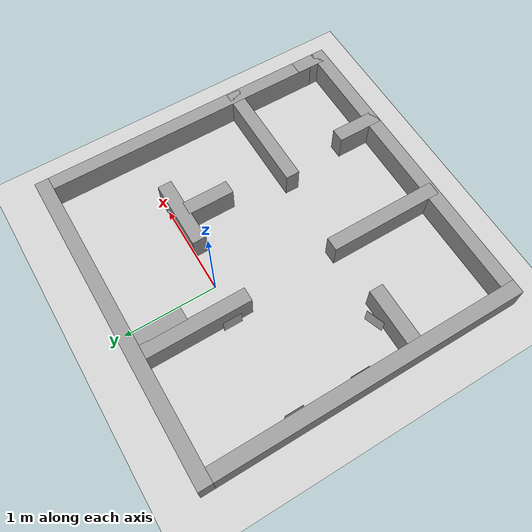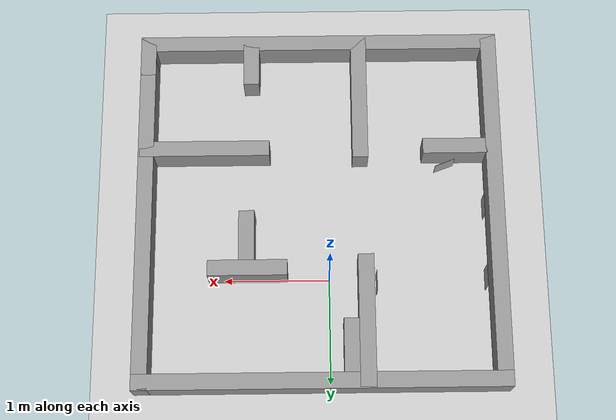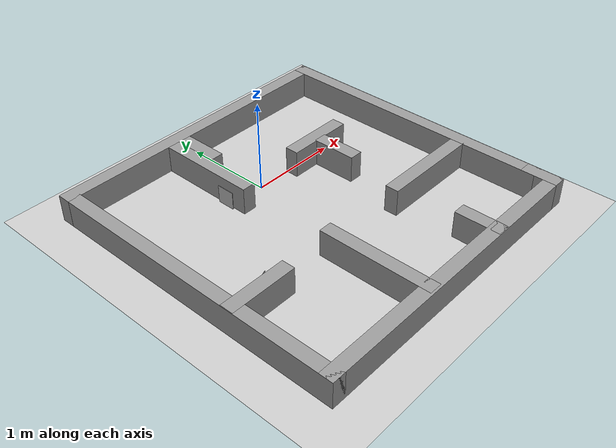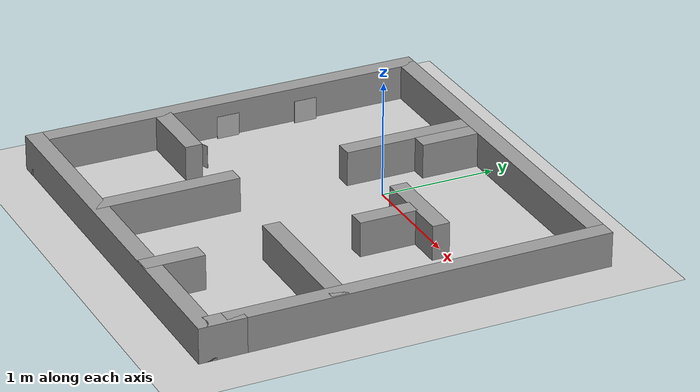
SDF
<sdf version="1.7">
 <world name="default">
  <light name="sun" type="directional">
   <pose>0 0 10 0 -0 0</pose>
   <diffuse>0.8 0.8 0.8 1</diffuse>
   <specular>0.2 0.2 0.2 1</specular>
   <attenuation>
    <range>1000</range>
    <constant>0.9</constant>
    <linear>0.01</linear>
    <quadratic>0.001</quadratic>
   </attenuation>
   <direction>-0.5 0.1 -0.9</direction>
   <spot><inner_angle>0</inner_angle><outer_angle>0</outer_angle><falloff>0</falloff></spot>
  </light>
  <model name="ground_plane">
   <static>1</static>
   <link name="link">
    <collision name="collision">
     <geometry><plane><normal>0 0 1</normal><size>100 100</size></plane></geometry>
     <surface><friction><ode><mu>100</mu><mu2>50</mu2></ode></friction></surface>
    </collision>
    <visual name="visual">
     <cast_shadows>0</cast_shadows>
     <geometry><plane><normal>0 0 1</normal><size>100 100</size></plane></geometry>
     <material>
      <script><uri>file://media/materials/scripts/gazebo.material</uri><name>Gazebo/Grey</name></script>
     </material>
    </visual>
   </link>
  </model>
  <gravity>0 0 -9.8</gravity>
  <magnetic_field>6e-06 2.3e-05 -4.2e-05</magnetic_field>
  <atmosphere type="adiabatic"/>
  <physics type="ode">
   <max_step_size>0.001</max_step_size>
   <real_time_factor>1</real_time_factor>
   <real_time_update_rate>1000</real_time_update_rate>
  </physics>
  <scene><ambient>0.4 0.4 0.4 1</ambient><background>0.7 0.7 0.7 1</background><shadows>1</shadows></scene>
  <audio><device>default</device></audio>
  <spherical_coordinates>
   <surface_model>EARTH_WGS84</surface_model>
   <latitude_deg>0</latitude_deg>
   <longitude_deg>0</longitude_deg>
   <elevation>0</elevation>
   <heading_deg>0</heading_deg>
  </spherical_coordinates>
  <model name="labmapfixed">
   <pose>0.079467 -0.67341 0 0 -0 0</pose>
   <link name="Wall_24">
    <collision name="Wall_24_Collision">
     <geometry><box><size>3.25 0.15 0.3</size></box></geometry>
     <pose>0 0 0.15 0 -0 0</pose>
    </collision>
    <visual name="Wall_24_Visual">
     <pose>0 0 0.15 0 -0 0</pose>
     <geometry><box><size>3.25 0.15 0.3</size></box></geometry>
     <material>
      <script><uri>file://media/materials/scripts/gazebo.material</uri><name>Gazebo/Grey</name></script>
      <ambient>1 1 1 1</ambient>
     </material>
     <meta><layer>0</layer></meta>
    </visual>
    <pose>1.675 0.125 0 0 -0 -1.5708</pose>
   </link>
   <link name="Wall_26">
    <collision name="Wall_26_Collision">
     <geometry><box><size>3.5 0.15 0.3</size></box></geometry>
     <pose>0 0 0.15 0 -0 0</pose>
    </collision>
    <visual name="Wall_26_Visual">
     <pose>0 0 0.15 0 -0 0</pose>
     <geometry><box><size>3.5 0.15 0.3</size></box></geometry>
     <material>
      <script><uri>file://media/materials/scripts/gazebo.material</uri><name>Gazebo/Grey</name></script>
      <ambient>1 1 1 1</ambient>
     </material>
     <meta><layer>0</layer></meta>
    </visual>
    <pose>0 1.675 0 0 -0 3.14159</pose>
   </link>
   <link name="Wall_27">
    <collision name="Wall_27_Collision">
     <geometry><box><size>3.5 0.15 0.3</size></box></geometry>
     <pose>0 0 0.15 0 -0 0</pose>
    </collision>
    <visual name="Wall_27_Visual">
     <pose>0 0 0.15 0 -0 0</pose>
     <geometry><box><size>3.5 0.15 0.3</size></box></geometry>
     <material>
      <script><uri>file://media/materials/scripts/gazebo.material</uri><name>Gazebo/Grey</name></script>
      <ambient>1 1 1 1</ambient>
     </material>
     <meta><layer>0</layer></meta>
    </visual>
    <pose>-1.675 0 0 0 -0 -1.5708</pose>
   </link>
   <link name="Wall_28">
    <collision name="Wall_28_Collision">
     <geometry><box><size>3.5 0.15 0.3</size></box></geometry>
     <pose>0 0 0.15 0 -0 0</pose>
    </collision>
    <visual name="Wall_28_Visual">
     <pose>0 0 0.15 0 -0 0</pose>
     <geometry><box><size>3.5 0.15 0.3</size></box></geometry>
     <material>
      <script><uri>file://media/materials/scripts/gazebo.material</uri><name>Gazebo/Grey</name></script>
      <ambient>1 1 1 1</ambient>
     </material>
     <meta><layer>0</layer></meta>
    </visual>
    <pose>0 -1.675 0 0 -0 0</pose>
   </link>
   <link name="Wall_29">
    <collision name="Wall_29_Collision">
     <geometry><box><size>0.4 0.15 0.3</size></box></geometry>
     <pose>0 0 0.15 0 -0 0</pose>
    </collision>
    <visual name="Wall_29_Visual">
     <pose>0 0 0.15 0 -0 0</pose>
     <geometry><box><size>0.4 0.15 0.3</size></box></geometry>
     <material>
      <script><uri>file://media/materials/scripts/gazebo.material</uri><name>Gazebo/Grey</name></script>
      <ambient>1 1 1 1</ambient>
     </material>
     <meta><layer>0</layer></meta>
    </visual>
    <pose>1.675 -1.55 0 0 -0 1.5708</pose>
   </link>
   <link name="Wall_31">
    <collision name="Wall_31_Collision">
     <geometry><box><size>0.75 0.15 0.3</size></box></geometry>
     <pose>0 0 0.15 0 -0 0</pose>
    </collision>
    <visual name="Wall_31_Visual">
     <pose>0 0 0.15 0 -0 0</pose>
     <geometry><box><size>0.75 0.15 0.3</size></box></geometry>
     <material>
      <script><uri>file://media/materials/scripts/gazebo.material</uri><name>Gazebo/Grey</name></script>
      <ambient>1 1 1 1</ambient>
     </material>
     <meta><layer>0</layer></meta>
    </visual>
    <pose>-1.369 -0.581 0 0 -0 0</pose>
   </link>
   <link name="Wall_33">
    <collision name="Wall_33_Collision">
     <geometry><box><size>1.25 0.15 0.3</size></box></geometry>
     <pose>0 0 0.15 0 -0 0</pose>
    </collision>
    <visual name="Wall_33_Visual">
     <pose>0 0 0.15 0 -0 0</pose>
     <geometry><box><size>1.25 0.15 0.3</size></box></geometry>
     <material>
      <script><uri>file://media/materials/scripts/gazebo.material</uri><name>Gazebo/Grey</name></script>
      <ambient>1 1 1 1</ambient>
     </material>
     <meta><layer>0</layer></meta>
    </visual>
    <pose>-0.39 -1.101 0 0 -0 1.5708</pose>
   </link>
   <link name="Wall_35">
    <collision name="Wall_35_Collision">
     <geometry><box><size>0.5 0.15 0.3</size></box></geometry>
     <pose>0 0 0.15 0 -0 0</pose>
    </collision>
    <visual name="Wall_35_Visual">
     <pose>0 0 0.15 0 -0 0</pose>
     <geometry><box><size>0.5 0.15 0.3</size></box></geometry>
     <material>
      <script><uri>file://media/materials/scripts/gazebo.material</uri><name>Gazebo/Grey</name></script>
      <ambient>1 1 1 1</ambient>
     </material>
     <meta><layer>0</layer></meta>
    </visual>
    <pose>0.663 -1.492 0 0 -0 1.5708</pose>
   </link>
   <link name="Wall_37">
    <collision name="Wall_37_Collision">
     <geometry><box><size>1.25 0.15 0.3</size></box></geometry>
     <pose>0 0 0.15 0 -0 0</pose>
    </collision>
    <visual name="Wall_37_Visual">
     <pose>0 0 0.15 0 -0 0</pose>
     <geometry><box><size>1.25 0.15 0.3</size></box></geometry>
     <material>
      <script><uri>file://media/materials/scripts/gazebo.material</uri><name>Gazebo/Grey</name></script>
      <ambient>1 1 1 1</ambient>
     </material>
     <meta><layer>0</layer></meta>
    </visual>
    <pose>1.111 -0.575 0 0 -0 3.14159</pose>
   </link>
   <link name="Wall_39">
    <collision name="Wall_39_Collision">
     <geometry><box><size>1.25 0.15 0.3</size></box></geometry>
     <pose>0 0 0.15 0 -0 0</pose>
    </collision>
    <visual name="Wall_39_Visual">
     <pose>0 0 0.15 0 -0 0</pose>
     <geometry><box><size>1.25 0.15 0.3</size></box></geometry>
     <material>
      <script><uri>file://media/materials/scripts/gazebo.material</uri><name>Gazebo/Grey</name></script>
      <ambient>1 1 1 1</ambient>
     </material>
     <meta><layer>0</layer></meta>
    </visual>
    <pose>-0.423 1.113 0 0 -0 -1.5708</pose>
   </link>
   <link name="Wall_45">
    <collision name="Wall_45_Collision">
     <geometry><box><size>0.75 0.15 0.3</size></box></geometry>
     <pose>0 0 0.15 0 -0 0</pose>
    </collision>
    <visual name="Wall_45_Visual">
     <pose>0 0 0.15 0 -0 0</pose>
     <geometry><box><size>0.75 0.15 0.3</size></box></geometry>
     <material>
      <script><uri>file://media/materials/scripts/gazebo.material</uri><name>Gazebo/Grey</name></script>
      <ambient>1 1 1 1</ambient>
     </material>
     <meta><layer>0</layer></meta>
    </visual>
    <pose>0.693 0.61 0 0 -0 0</pose>
   </link>
   <link name="Wall_47">
    <collision name="Wall_47_Collision">
     <geometry><box><size>0.5 0.15 0.3</size></box></geometry>
     <pose>0 0 0.15 0 -0 0</pose>
    </collision>
    <visual name="Wall_47_Visual">
     <pose>0 0 0.15 0 -0 0</pose>
     <geometry><box><size>0.5 0.15 0.3</size></box></geometry>
     <material>
      <script><uri>file://media/materials/scripts/gazebo.material</uri><name>Gazebo/Grey</name></script>
      <ambient>1 1 1 1</ambient>
     </material>
     <meta><layer>0</layer></meta>
    </visual>
    <pose>0.702 0.303 0 0 -0 -1.5708</pose>
   </link>
   <link name="Wall_50">
    <collision name="Wall_50_Collision">
     <geometry><box><size>0.5 0.15 0.3</size></box></geometry>
     <pose>0 0 0.15 0 -0 0</pose>
    </collision>
    <visual name="Wall_50_Visual">
     <pose>0 0 0.15 0 -0 0</pose>
     <geometry><box><size>0.5 0.15 0.3</size></box></geometry>
     <material>
      <script><uri>file://media/materials/scripts/gazebo.material</uri><name>Gazebo/Grey</name></script>
      <ambient>1 1 1 1</ambient>
     </material>
     <meta><layer>0</layer></meta>
    </visual>
    <pose>-0.28 1.35 0 0 -0 -1.5708</pose>
   </link>
   <static>1</static>
  </model>
  <model name="aruco_tag_1">
   <static>1</static>
   <link name="link">
    <visual name="visual">
     <geometry>
      <mesh><uri>model://aruco_tag_1/meshes/aruco_tag_1.dae</uri><scale>0.4 0.4 0.4</scale></mesh>
     </geometry>
    </visual>
   </link>
   <pose>-1.48546 0.012064 0 0 -0 0</pose>
  </model>
  <model name="aruco_tag_2">
   <static>1</static>
   <link name="link">
    <visual name="visual">
     <geometry>
      <mesh><uri>model://aruco_tag_2/meshes/aruco_tag_2.dae</uri><scale>0.4 0.4 0.4</scale></mesh>
     </geometry>
    </visual>
   </link>
   <pose>-0.44632 0.050082 0.006434 0 -0 0</pose>
  </model>
  <model name="aruco_tag_3">
   <static>1</static>
   <link name="link">
    <visual name="visual">
     <geometry>
      <mesh><uri>model://aruco_tag_3/meshes/aruco_tag_3.dae</uri><scale>0.4 0.4 0.4</scale></mesh>
     </geometry>
    </visual>
   </link>
   <pose>-1.49369 -0.692541 0 0 -0 0</pose>
  </model>
  <model name="aruco_tag_4">
   <static>1</static>
   <link name="link">
    <visual name="visual">
     <geometry>
      <mesh><uri>model://aruco_tag_4/meshes/aruco_tag_4.dae</uri><scale>0.4 0.4 0.4</scale></mesh>
     </geometry>
    </visual>
   </link>
   <pose>-1.13125 -1.11593 0 0 -0 1.9244</pose>
  </model>
 </world>
</sdf>
